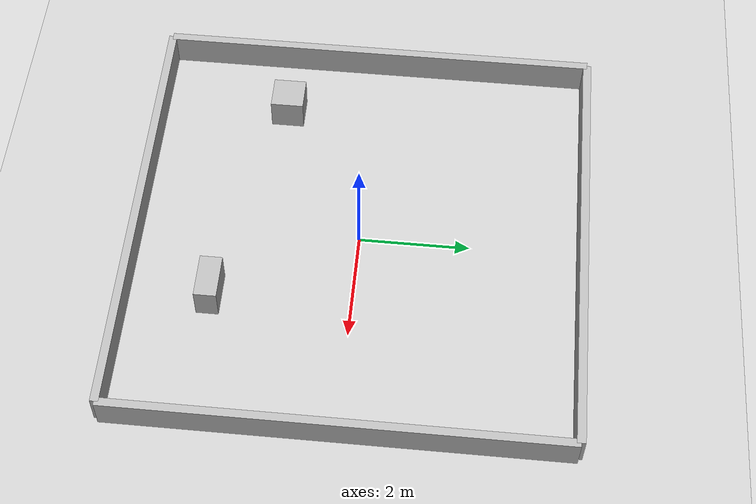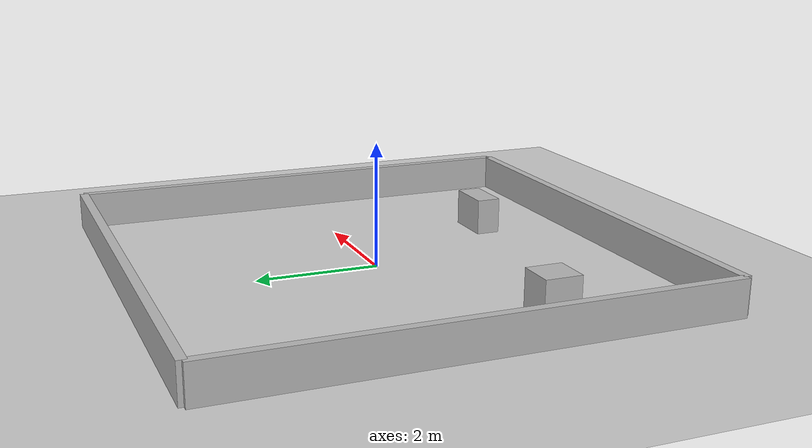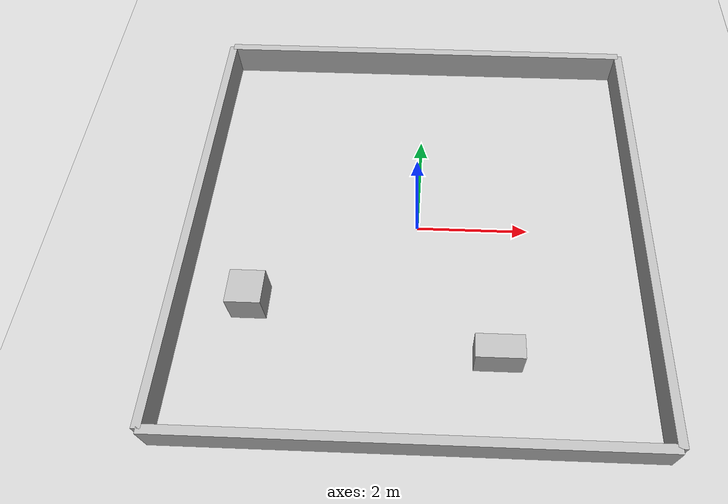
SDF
<?xml version="1.0"?>
<sdf version="1.6">
  <world name="inspection_world">
    <include><uri>model://ground_plane</uri></include>
    <include><uri>model://sun</uri></include>

    <model name="north_wall">
      <static>true</static>
      <pose>0 4 0.3 0 0 0</pose>
      <link name="link">
        <collision name="collision"><geometry><box>
          <size>8 0.15 0.6</size>
        </box></geometry></collision>
        <visual name="visual"><geometry><box>
          <size>8 0.15 0.6</size>
        </box></geometry></visual>
      </link>
    </model>

    <model name="south_wall">
      <static>true</static>
      <pose>0 -4 0.3 0 0 0</pose>
      <link name="link">
        <collision name="collision"><geometry><box>
          <size>8 0.15 0.6</size>
        </box></geometry></collision>
        <visual name="visual"><geometry><box>
          <size>8 0.15 0.6</size>
        </box></geometry></visual>
      </link>
    </model>

    <model name="east_wall">
      <static>true</static>
      <pose>4 0 0.3 0 0 0</pose>
      <link name="link">
        <collision name="collision"><geometry><box>
          <size>0.15 8 0.6</size>
        </box></geometry></collision>
        <visual name="visual"><geometry><box>
          <size>0.15 8 0.6</size>
        </box></geometry></visual>
      </link>
    </model>

    <model name="west_wall">
      <static>true</static>
      <pose>-4 0 0.3 0 0 0</pose>
      <link name="link">
        <collision name="collision"><geometry><box>
          <size>0.15 8 0.6</size>
        </box></geometry></collision>
        <visual name="visual"><geometry><box>
          <size>0.15 8 0.6</size>
        </box></geometry></visual>
      </link>
    </model>

    <model name="block_a">
      <static>true</static>
      <pose>-2.8 -1.6 0.3 0 0 0</pose>
      <link name="link">
        <collision name="collision"><geometry><box>
          <size>0.6 0.6 0.6</size>
        </box></geometry></collision>
        <visual name="visual"><geometry><box>
          <size>0.6 0.6 0.6</size>
        </box></geometry></visual>
      </link>
    </model>

    <model name="block_b">
      <static>true</static>
      <pose>1.4 -2.5 0.3 0 0 0</pose>
      <link name="link">
        <collision name="collision"><geometry><box>
          <size>0.8 0.4 0.6</size>
        </box></geometry></collision>
        <visual name="visual"><geometry><box>
          <size>0.8 0.4 0.6</size>
        </box></geometry></visual>
      </link>
    </model>

  </world>
</sdf>
